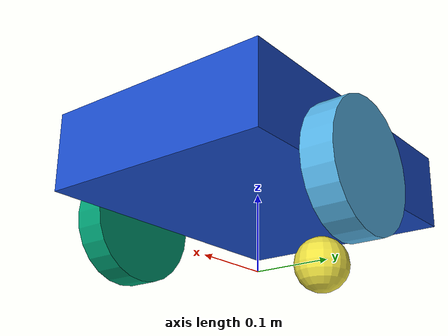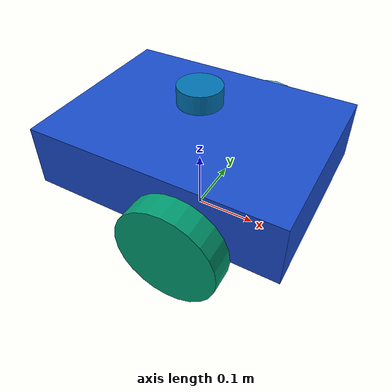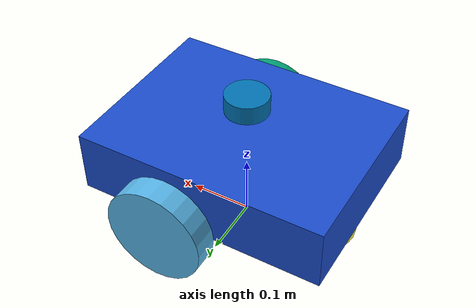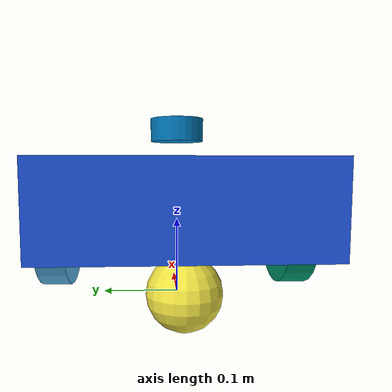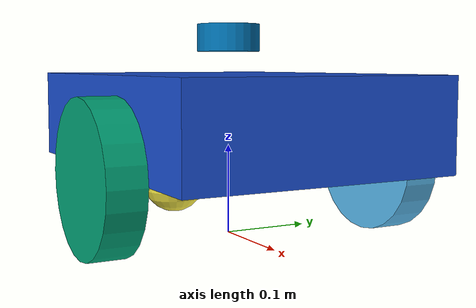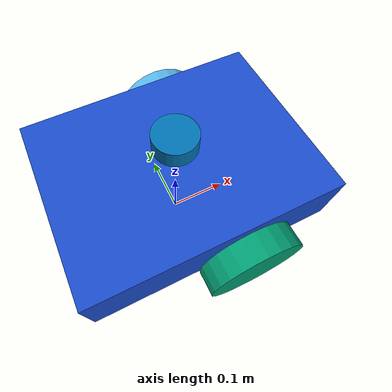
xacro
<?xml version="1.0"?>

<robot name="robot_lab"
  xmlns:xacro="http://www.ros.org/wiki/xacro">

  <!-- ==================== BASE ==================== -->

  <link name="base_link">

    <visual>
      <origin xyz="0 0 0.13" />
      <geometry>
        <box size="0.40 0.30 0.10" />
      </geometry>
      <material name="blue">
        <color rgba="0.1 0.3 0.8 1.0" />
      </material>
    </visual>

    <collision>
      <origin xyz="0 0 0.13" />
      <geometry>
        <box size="0.40 0.30 0.10" />
      </geometry>
    </collision>

    <inertial>
      <origin xyz="0 0 0.13" />
      <mass value="5.0" />
      <inertia
        ixx="0.0417"
        ixy="0"
        ixz="0"
        iyy="0.0708"
        iyz="0"
        izz="0.1042" />
    </inertial>

  </link>

  <!-- ==================== LEFT WHEEL ==================== -->

  <joint name="left_wheel_joint" type="continuous">
    <parent link="base_link" />
    <child link="left_wheel_link" />
    <origin xyz="0.05 0.17 0.08" />
    <axis xyz="0 1 0" />
    <dynamics damping="0.1" />
  </joint>

  <link name="left_wheel_link">

    <visual>
      <origin rpy="1.5708 0 0" />
      <geometry>
        <cylinder radius="0.08" length="0.04" />
      </geometry>
    </visual>

    <collision>
      <origin rpy="1.5708 0 0" />
      <geometry>
        <cylinder radius="0.08" length="0.04" />
      </geometry>
    </collision>

    <inertial>
      <mass value="0.5" />
      <inertia
        ixx="0.00087"
        ixy="0"
        ixz="0"
        iyy="0.00160"
        iyz="0"
        izz="0.00087" />
    </inertial>

  </link>

  <!-- ==================== RIGHT WHEEL ==================== -->

  <joint name="right_wheel_joint" type="continuous">
    <parent link="base_link" />
    <child link="right_wheel_link" />
    <origin xyz="0.05 -0.17 0.08" />
    <axis xyz="0 1 0" />
    <dynamics damping="0.1" />
  </joint>

  <link name="right_wheel_link">

    <visual>
      <origin rpy="1.5708 0 0" />
      <geometry>
        <cylinder radius="0.08" length="0.04" />
      </geometry>
    </visual>

    <collision>
      <origin rpy="1.5708 0 0" />
      <geometry>
        <cylinder radius="0.08" length="0.04" />
      </geometry>
    </collision>

    <inertial>
      <mass value="0.5" />
      <inertia
        ixx="0.00087"
        ixy="0"
        ixz="0"
        iyy="0.00160"
        iyz="0"
        izz="0.00087" />
    </inertial>

  </link>

  <!-- ==================== CASTER ==================== -->

  <joint name="caster_joint" type="fixed">
    <parent link="base_link" />
    <child link="caster_link" />
    <origin xyz="-0.15 0 0.04" />
  </joint>

  <link name="caster_link">

    <visual>
      <geometry>
        <sphere radius="0.04" />
      </geometry>
    </visual>

    <collision>
      <geometry>
        <sphere radius="0.04" />
      </geometry>
    </collision>

    <inertial>
      <mass value="0.1" />
      <inertia
        ixx="0.000064"
        ixy="0"
        ixz="0"
        iyy="0.000064"
        iyz="0"
        izz="0.000064" />
    </inertial>

  </link>

  <!-- ==================== LIDAR ==================== -->

  <joint name="lidar_joint" type="fixed">
    <parent link="base_link" />
    <child link="lidar_link" />
    <origin xyz="0 0 0.22" rpy="0 0 0" />
  </joint>

  <link name="lidar_link">

    <visual>
      <geometry>
        <cylinder radius="0.035" length="0.03" />
      </geometry>
    </visual>

    <collision>
      <geometry>
        <cylinder radius="0.035" length="0.03" />
      </geometry>
    </collision>

    <inertial>
      <mass value="0.1" />
      <inertia
        ixx="0.0001"
        ixy="0"
        ixz="0"
        iyy="0.0001"
        iyz="0"
        izz="0.0001" />
    </inertial>

  </link>

  <!-- ==================== GAZEBO LIDAR SENSOR ==================== -->

  <gazebo reference="lidar_link">

    <sensor name="lidar" type="gpu_lidar">

      <topic>scan</topic>
      <update_rate>10</update_rate>

      <gz_frame_id>lidar_link</gz_frame_id>

      <lidar>

        <scan>
          <horizontal>
            <samples>360</samples>
            <resolution>1</resolution>
            <min_angle>-3.14159</min_angle>
            <max_angle>3.14159</max_angle>
          </horizontal>
        </scan>

        <range>
          <min>0.12</min>
          <max>8.0</max>
          <resolution>0.01</resolution>
        </range>

      </lidar>

      <always_on>true</always_on>
      <visualize>true</visualize>

    </sensor>

  </gazebo>

  <!-- ==================== ROS 2 CONTROL ==================== -->

  <ros2_control name="GazeboSimSystem" type="system">

    <hardware>
      <plugin>gz_ros2_control/GazeboSimSystem</plugin>
    </hardware>

    <joint name="left_wheel_joint">

      <command_interface name="velocity">
        <param name="min">-20</param>
        <param name="max">20</param>
      </command_interface>

      <state_interface name="position" />
      <state_interface name="velocity" />

    </joint>

    <joint name="right_wheel_joint">

      <command_interface name="velocity">
        <param name="min">-20</param>
        <param name="max">20</param>
      </command_interface>

      <state_interface name="position" />
      <state_interface name="velocity" />

    </joint>

  </ros2_control>

  <!-- ==================== GAZEBO ROS2 CONTROL ==================== -->

  <gazebo>

    <plugin
      filename="gz_ros2_control-system"
      name="gz_ros2_control::GazeboSimROS2ControlPlugin">

      <parameters>
        $(find robots)/diffdrive_lidar/controllers.yaml
      </parameters>

    </plugin>

  </gazebo>

</robot>
